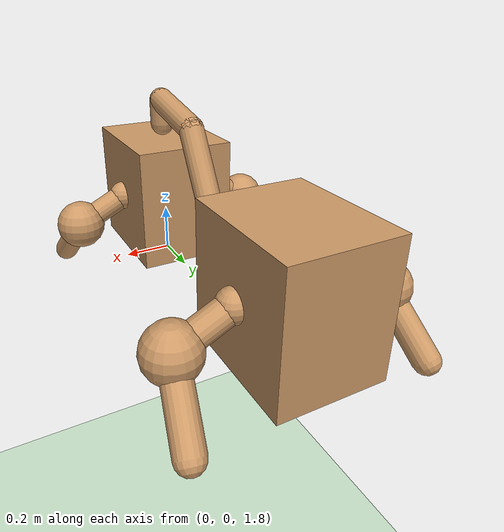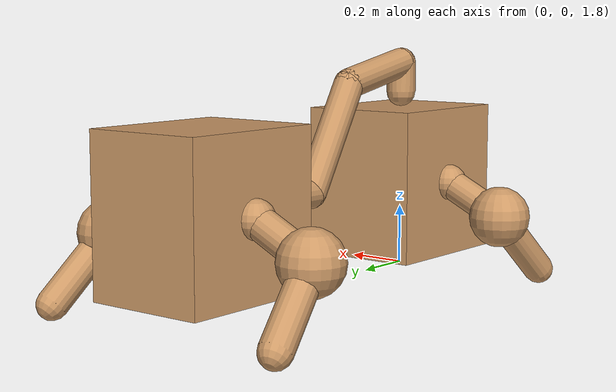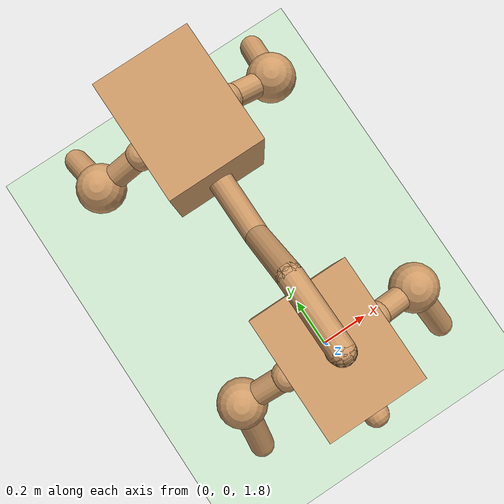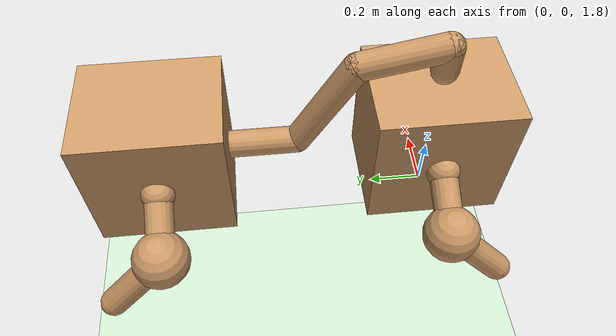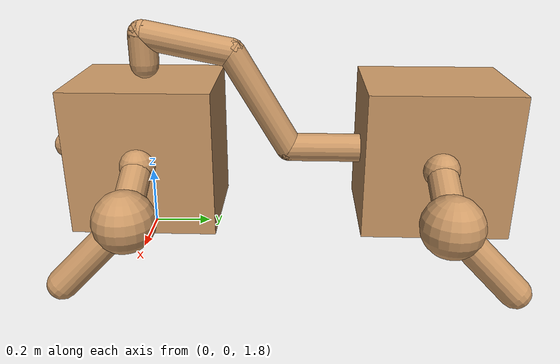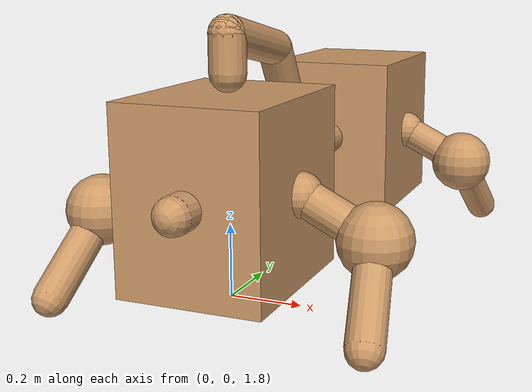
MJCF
<!-- This XML MuJoCo model was built by Jaejin Lee (https://github.com/ArchMelow) -->

<mujoco model="reindeer">

  <compiler angle="degree" coordinate="local" inertiafromgeom="true"/>
  <option integrator="RK4" timestep="0.01" />
  <option gravity="0 0 -9.81" />
  <custom>
    <numeric data="0.0 0.0 0.55 1.0 0.0 0.0 0.0 0.0 1.0 0.0 -1.0 0.0 -1.0 0.0 1.0" name="init_qpos"/>
  </custom>
  <default>
    <joint armature="1" damping="1" limited="true"/>
    <geom conaffinity="1" condim="3" density="5.0" friction="1 0.5 0.5" margin="0.01" rgba="0.8 0.6 0.4 1"/>
  </default>
  <asset>
    <texture builtin="gradient" height="100" rgb1="1 1 1" rgb2="0 0 0" type="skybox" width="100"/>
    <texture builtin="flat" height="1278" mark="cross" markrgb="1 1 1" name="texgeom" random="0.01" rgb1="0.8 0.6 0.4" rgb2="0.8 0.6 0.4" type="cube" width="127"/>
    <texture builtin="checker" height="100" name="texplane" rgb1="0 0 0" rgb2="0.8 0.8 0.8" type="2d" width="100"/>
    <material name="MatPlane" reflectance="0.5" shininess="1" specular="1" texrepeat="60 60" texture="texplane"/>
    <material name="geom" texture="texgeom" texuniform="true"/>
  </asset>

  <worldbody>
    <light cutoff="100" diffuse="1 1 1" dir="-0 0 -1.3" directional="true" exponent="1" pos="0 0 1.3" specular=".1 .1 .1"/>
    <geom conaffinity="1" condim="3" material="MatPlane" name="floor" pos="0 0 0" rgba="0.8 0.9 0.8 1" size="40 40 40" type="plane"/>

    <body name ="modules" pos="0 0 0.7">
      <!-- adds gravity effect -->
      <joint armature="0" damping="0" limited="false" margin="0.01" name="root" pos="0 0 0" type="free"/>
      <body name ="head_module" pos="0 0 0.7">

          <!-- rotation w.r.t z-axis. (-80 ~ 80 deg) -->

        <body name="joint1" pos = "0 0 0">
          <geom name="head_geom" pos="0 0 0.7" size=".2 .25 .25" type="box"/>
          <joint axis="0 0 1" name="head_motor" pos="0.0 0.0 1.0" range="-80 80" type="hinge"/>
          <geom fromto="0 0 1.0 0 0 1.1" name="aux1" size="0.05" type="capsule"/>
          <geom fromto="0 0 0.7 0.2 0.0 0.7" name="left_front_leg_geom" size="0.05" type="capsule"/>
          <geom name="dummy_joint1" pos="0.2 0 0.7" size="0.06" type="sphere"/>
          <geom fromto="0 0 0.7 -0.2 0.0 0.7" name="right_front_leg_geom" size="0.05" type= "capsule"/>
          <geom name="dummy_joint2" pos="-0.2 0.0 0.7" size="0.06" type="sphere"/>
          <geom fromto="0 0 0.7 0 -0.3 0.7" name="distance_sensor_geom" size="0.05" type="capsule"/>
          <geom fromto="0.2 0.0 0.7 0.4 0.0 0.6" name="left_front_ankle_geom" size="0.05" type="capsule"/>
          <geom fromto="-0.2 0.0 0.7 -0.4 0.0 0.6" name="right_front_ankle_geom" size="0.05" type="capsule"/>
          <geom name="dummy_joint3" pos="0.4 0.0 0.6" size="0.1" type="sphere"/>
          <geom name="dummy_joint4" pos="-0.4 0.0 0.6" size="0.1" type="sphere"/>
          <geom fromto="0.4 0.0 0.6 0.44 -0.2 0.4" name="left_front_foot_geom" size="0.05" type="capsule"/>
          <geom fromto="-0.4 0.0 0.6 -0.44 -0.2 0.4" name="right_front_foot_geom" size="0.05" type="capsule"/>
          <site name="accel1" type="box" pos="0 0 0.7" size=".2 .25 .25" rgba=".9 .0 .0 1"/>
        </body>

      </body>

      <geom fromto="0 0 1.8 0.0 0.3 1.74" name="link1" size="0.05" type="capsule"/>
      <geom fromto="0 0.3 1.74 0 0.5 1.4" name="link2" size="0.05" type="capsule"/>

      <body name ="tail_module" pos="0 0 0.7">
        <!-- tail -->

        <body name="joint2" pos = "0 0 0">
          <geom name="tail_geom" pos="0 1.0 0.7" size=".2 .25 .25" type="box"/>
          <joint axis="0 1 0" name="tail_motor" pos="0 0.75 0.7" range="-80 80" type="hinge"/>
          <geom fromto="0 0.5 0.7 0 0.75 0.7" name="joint_link" size="0.05" type="capsule"/>
          <geom name="dummy_joint6" pos="0.2 1.0 0.7" size="0.06" type="sphere"/>
          <geom name="dummy_joint7" pos="-0.2 1.0 0.7" size="0.06" type="sphere"/>
          <geom fromto="0.2 1.0 0.7 0.4 1.0 0.6" name="left_back_ankle_geom" size="0.05" type="capsule"/>
          <geom fromto="-0.2 1.0 0.7 -0.4 1.0 0.6" name="right_back_ankle_geom" size="0.05" type="capsule"/>
          <geom name="dummy_joint8" pos="0.4 1.0 0.6" size="0.1" type="sphere"/>
          <geom name="dummy_joint9" pos="-0.4 1.0 0.6" size="0.1" type="sphere"/>
          <geom fromto="0.4 1.0 0.6 0.44 1.2 0.4" name="left_back_foot_geom" size="0.05" type="capsule"/>
          <geom fromto="-0.4 1.0 0.6 -0.44 1.2 0.4" name="right_back_foot_geom" size="0.05" type="capsule"/>
          <site name="accel2" type="box" pos="0 1.0 0.7" size=".2 .25 .25" rgba=".0 .0 .9 1"/>
        </body>

      </body>

    </body>

  </worldbody>

  <actuator>
    <position joint="head_motor" gear="1" kp="10" ctrllimited="false" forcelimited="false" />
    <position joint="tail_motor" gear="1" kp="10" ctrllimited="false" forcelimited="false" />
  </actuator>

  <sensor>
    <accelerometer site="accel1"/>
    <accelerometer site="accel2"/>
  </sensor>
</mujoco>
